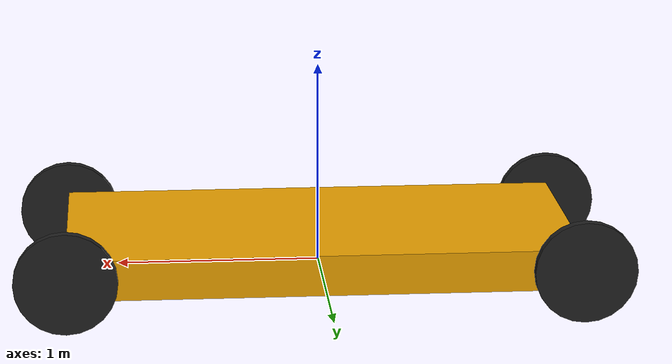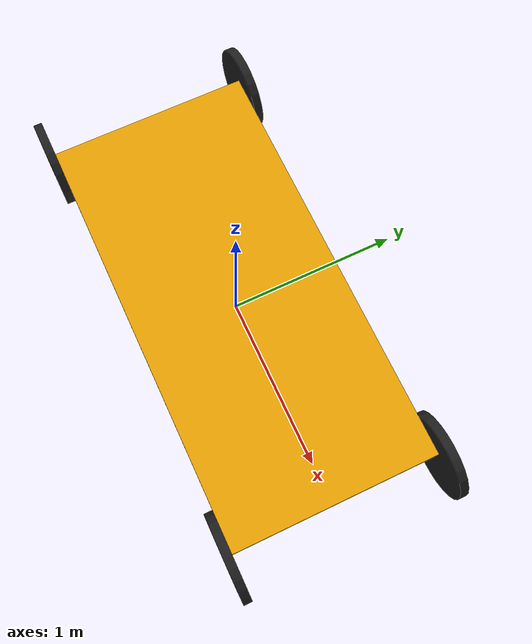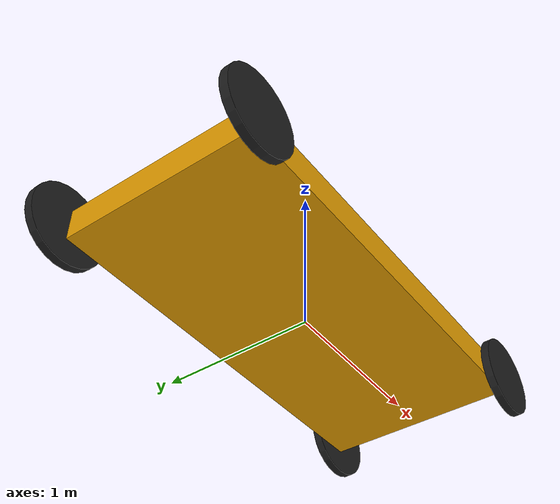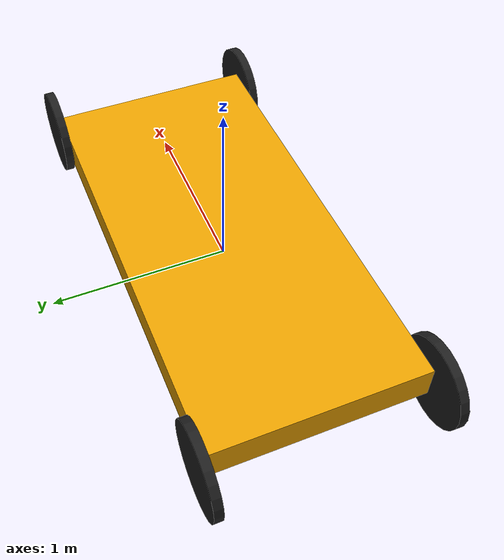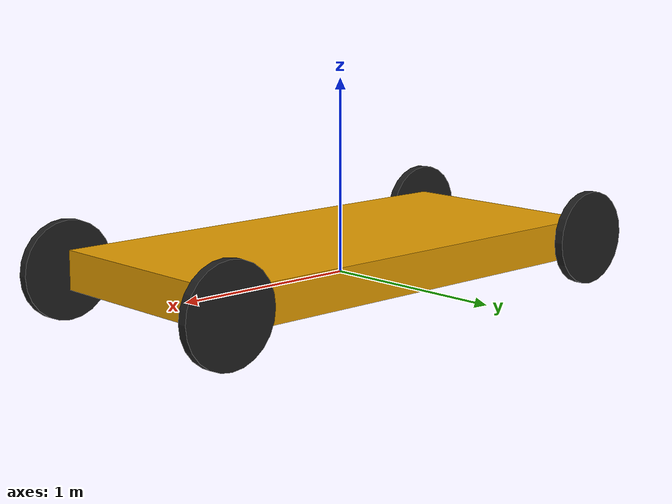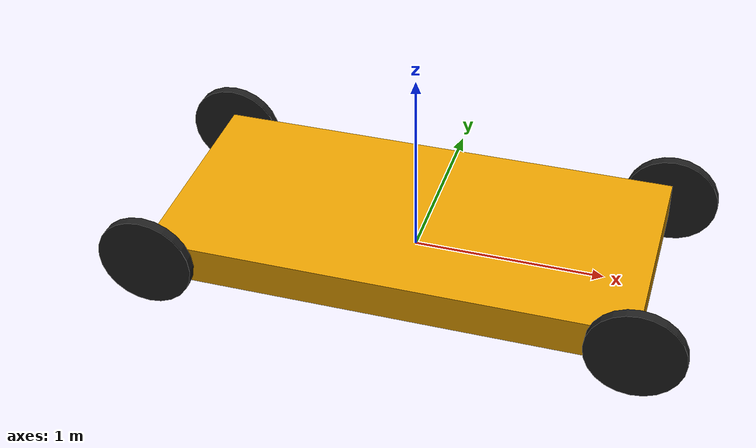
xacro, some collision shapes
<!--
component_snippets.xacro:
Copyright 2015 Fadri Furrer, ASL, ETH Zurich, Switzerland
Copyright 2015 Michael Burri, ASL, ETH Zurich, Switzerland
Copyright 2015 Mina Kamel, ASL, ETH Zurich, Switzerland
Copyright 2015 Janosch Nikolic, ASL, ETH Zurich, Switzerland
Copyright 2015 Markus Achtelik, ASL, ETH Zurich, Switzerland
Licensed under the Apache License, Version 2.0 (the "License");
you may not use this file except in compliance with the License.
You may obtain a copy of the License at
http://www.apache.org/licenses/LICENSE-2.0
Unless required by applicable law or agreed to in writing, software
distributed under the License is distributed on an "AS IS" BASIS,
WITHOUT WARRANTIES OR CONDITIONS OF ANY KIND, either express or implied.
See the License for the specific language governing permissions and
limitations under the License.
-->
<?xml version="1.0"?>

<robot name="car" xmlns:xacro="http://ros.org/wiki/xacro">

    <!--    Properties    -->
    <xacro:property name="namespace" value="car"/>
    <xacro:property name="PI" value="3.1415926535897931"/>
    <xacro:property name="skin_car" value="package://workshop_description/meshes/car/BMW.dae"/>

    <!-- Properties of base -->
    <xacro:property name="height" value=".2"/>
    <xacro:property name="width" value="1.2"/>
    <xacro:property name="length" value="2.5"/>
    <xacro:property name="mass_base" value="10"/>

    <!-- Properties of wheels    -->
    <xacro:property name="radius" value="0.25"/>
    <xacro:property name="h" value="0.05"/>
    <xacro:property name="mass_wheel" value="2"/>

    <!-- Including Color material for Gazebo -->
    <xacro:include filename="$(find workshop_description)/urdf/materials.xacro"/>

    <!--    Including sensors component-->
    <xacro:include filename="$(find workshop_description)/urdf/component_snippets.xacro"/>

    <!--    Include link to Gazebo structure-->
    <xacro:include filename="$(find workshop_description)/urdf/car.gazebo"/>

    <link name="base_link">
        <collision>
            <origin xyz="0 0 ${height/2}" rpy="0 0 0"/>
            <geometry>
                <box size="${length} ${width} ${height}"/>
            </geometry>
        </collision>
        <visual>
            <origin xyz="0 0 -${height/2}" rpy="${PI/2} 0 ${PI}"/>
            <geometry>
                <mesh filename="${skin_car}" scale="1 1 1"/>
            </geometry>
        </visual>
        <inertial>
            <origin xyz="0 0 ${height/2}" rpy="0 0 0"/>
            <mass value="${mass_base}"/>
            <inertia ixx="${mass_base / 12.0 * (height*height + width*width)}" ixy="0.0" ixz="0.0"
                     iyy="${mass_base / 12.0 * (height*height + length*length)}" iyz="0.0"
                     izz="${mass_base / 12.0 * (length*length + width*width)}"/>
        </inertial>
    </link>

    <joint name="front_wheel_r_joint" type="continuous">
        <origin xyz="${length/2} ${(h+width)/2} ${height/2}" rpy="0.0 0.0 0.0"/>
        <parent link="base_link"/>
        <child link="front_wheel_r_link"/>
        <axis xyz="0 1 0"/>
    </joint>

    <joint name="front_wheel_l_joint" type="continuous">
        <origin xyz="${length/2} -${(h+width)/2} ${height/2}" rpy="0.0 0.0 0"/>
        <parent link="base_link"/>
        <child link="front_wheel_l_link"/>
        <axis xyz="0 1 0"/>
    </joint>

    <joint name="back_wheel_r_joint" type="continuous">
        <origin xyz="${-length/2} ${(h+width)/2} ${height/2}" rpy="0.0 0.0 0.0"/>
        <parent link="base_link"/>
        <child link="back_wheel_r_link"/>
        <axis xyz="0 1 0"/>
    </joint>

    <joint name="back_wheel_l_joint" type="continuous">
        <origin xyz="${-length/2} -${(h+width)/2} ${height/2}" rpy="0.0 0.0 0.0"/>
        <parent link="base_link"/>
        <child link="back_wheel_l_link"/>
        <axis xyz="0 1 0"/>
    </joint>

    <link name="front_wheel_r_link">
        <visual>
            <origin xyz="0.0 0.0 0.0" rpy="${PI/2} 0.0 0.0"/>
            <geometry>
                <cylinder radius="${radius}" length="${h}"/>
            </geometry>
        </visual>
        <collision>
            <origin xyz="0.0 0.0 0.0" rpy="${PI/2} 0.0 0.0"/>
            <geometry>
                <cylinder radius="${radius}" length="${h}"/>
            </geometry>
        </collision>
        <inertial>
            <origin xyz="0.0 0.0 0.0" rpy="${PI/2} 0.0 0.0"/>
            <mass value="${mass_wheel}"/>
            <inertia ixx="${mass_wheel / 12.0 * (3*radius*radius + h*h)}" ixy="0.0" ixz="0.0"
                     iyy="${mass_wheel / 12.0 * (3*radius*radius + h*h)}" iyz="0.0"
                     izz="${mass_wheel / 2.0 * (radius*radius)}"/>
        </inertial>
    </link>

    <link name="front_wheel_l_link">
        <visual>
            <origin xyz="0.0 0.0 0.0" rpy="${PI/2} 0.0 0.0"/>
            <geometry>
                <cylinder radius="${radius}" length="${h}"/>
            </geometry>
        </visual>
        <collision>
            <origin xyz="0.0 0.0 0.0" rpy="${PI/2} 0.0 0.0"/>
            <geometry>
                <cylinder radius="${radius}" length="${h}"/>
            </geometry>
        </collision>
        <inertial>
            <origin xyz="0.0 0.0 0.0" rpy="${PI/2} 0.0 0.0"/>
            <mass value="${mass_wheel}"/>
            <inertia ixx="${mass_wheel / 12.0 * (3*radius*radius + h*h)}" ixy="0.0" ixz="0.0"
                     iyy="${mass_wheel / 12.0 * (3*radius*radius + h*h)}" iyz="0.0"
                     izz="${mass_wheel / 2.0 * (radius*radius)}"/>
        </inertial>
    </link>

    <link name="back_wheel_r_link">
        <visual>
            <origin xyz="0.0 0.0 0.0" rpy="${PI/2} 0.0 0.0"/>
            <geometry>
                <cylinder radius="${radius}" length="${h}"/>
            </geometry>
        </visual>
        <collision>
            <origin xyz="0.0 0.0 0.0" rpy="${PI/2} 0.0 0.0"/>
            <geometry>
                <cylinder radius="${radius}" length="${h}"/>
            </geometry>
        </collision>
        <inertial>
            <origin xyz="0.0 0.0 0.0" rpy="${PI/2} 0.0 0.0"/>
            <mass value="${mass_wheel}"/>
            <inertia ixx="${mass_wheel / 12.0 * (3*radius*radius + h*h)}" ixy="0.0" ixz="0.0"
                     iyy="${mass_wheel / 12.0 * (3*radius*radius + h*h)}" iyz="0.0"
                     izz="${mass_wheel / 2.0 * (radius*radius)}"/>
        </inertial>
    </link>

    <link name="back_wheel_l_link">
        <visual>
            <origin xyz="0.0 0.0 0.0" rpy="${PI/2} 0.0 0.0"/>
            <geometry>
                <cylinder radius="${radius}" length="${h}"/>
            </geometry>
        </visual>
        <collision>
            <origin xyz="0.0 0.0 0.0" rpy="${PI/2} 0.0 0.0"/>
            <geometry>
                <cylinder radius="${radius}" length="${h}"/>
            </geometry>
        </collision>
        <inertial>
            <origin xyz="0.0 0.0 0.0" rpy="${PI/2} 0.0 0.0"/>
            <mass value="${mass_wheel}"/>
            <inertia ixx="${mass_wheel / 12.0 * (3*radius*radius + h*h)}" ixy="0.0" ixz="0.0"
                     iyy="${mass_wheel / 12.0 * (3*radius*radius + h*h)}" iyz="0.0"
                     izz="${mass_wheel / 2.0 * (radius*radius)}"/>
        </inertial>
    </link>

    <joint name="imu_joint" type="fixed">
        <origin xyz="0 0.0 ${height}" rpy="0.0 0.0 0.0"/>
        <parent link="base_link"/>
        <child link="imu_link"/>
        <axis xyz="0.0 0.0 1.0"/>
    </joint>

    <link name="imu_link">
    </link>

    <transmission name="front_wheel_r_tran">
        <type>transmission_interface/SimpleTransmission</type>
        <joint name="front_wheel_r_joint">
            <hardwareInterface>hardware_interface/EffortJointInterface</hardwareInterface>
        </joint>
        <actuator name="front_wheel_r_motor">
            <hardwareInterface>hardware_interface/EffortJointInterface</hardwareInterface>
            <mechanicalReduction>1</mechanicalReduction>
        </actuator>
    </transmission>
    <transmission name="front_wheel_l_tran">
        <type>transmission_interface/SimpleTransmission</type>
        <joint name="front_wheel_l_joint">
            <hardwareInterface>hardware_interface/EffortJointInterface</hardwareInterface>
        </joint>
        <actuator name="front_wheel_l_motor">
            <hardwareInterface>hardware_interface/EffortJointInterface</hardwareInterface>
            <mechanicalReduction>1</mechanicalReduction>
        </actuator>
    </transmission>
    <transmission name="back_wheel_r_tran">
        <type>transmission_interface/SimpleTransmission</type>
        <joint name="back_wheel_r_joint">
            <hardwareInterface>hardware_interface/EffortJointInterface</hardwareInterface>
        </joint>
        <actuator name="back_wheel_r_motor">
            <hardwareInterface>hardware_interface/EffortJointInterface</hardwareInterface>
            <mechanicalReduction>1</mechanicalReduction>
        </actuator>
    </transmission>
    <transmission name="back_wheel_l_tran">
        <type>transmission_interface/SimpleTransmission</type>
        <joint name="back_wheel_l_joint">
            <hardwareInterface>hardware_interface/EffortJointInterface</hardwareInterface>
        </joint>
        <actuator name="back_wheel_l_motor">
            <hardwareInterface>hardware_interface/EffortJointInterface</hardwareInterface>
            <mechanicalReduction>1</mechanicalReduction>
        </actuator>
    </transmission>

    <!-- ADIS16448 IMU. -->
    <xacro:imu_plugin_macro
            namespace="${namespace}"
            imu_suffix=""
            parent_link="base_link"
            imu_topic="imu"
            mass_imu_sensor="0.00015"
            gyroscope_noise_density="0.0003394"
            gyroscope_random_walk="0.000038785"
            gyroscope_bias_correlation_time="1000.0"
            gyroscope_turn_on_bias_sigma="0.0087"
            accelerometer_noise_density="0.004"
            accelerometer_random_walk="0.006"
            accelerometer_bias_correlation_time="300.0"
            accelerometer_turn_on_bias_sigma="0.1960">
        <inertia ixx="0.000001" ixy="0.0" ixz="0.0" iyy="0.000001" iyz="0.0" izz="0.000001"/>
        <origin xyz="0 0 0" rpy="0 0 0"/>
    </xacro:imu_plugin_macro>

    <!-- Mount a Odometry Sensor -->
    <!--            namespace="${namespace}"-->
    <!--            odometry_sensor_suffix="1"-->
    <!--            parent_link="${namespace}/base_link"-->
    <!--            pose_topic="odometry_sensor/pose"-->
    <!--            pose_with_covariance_topic="odometry_sensor/pose_with_covariance"-->
    <!--            position_topic="odometry_sensor/position"-->
    <!--            transform_topic="odometry_sensor/transform"-->
    <!--            odometry_topic="odometry_sensor/odometry"-->
    <!--            parent_frame_id="world"-->
    <!--            child_frame_id="${namespace}/odometry_sensor1"-->
    <!--            mass_odometry_sensor="0.00001"-->
    <!--            measurement_divisor="1"-->
    <!--            measurement_delay="0"-->
    <!--            unknown_delay="0.0"-->
    <!--            noise_normal_position="0 0 0"-->
    <!--            noise_normal_quaternion="0 0 0"-->
    <!--            noise_normal_linear_velocity="0 0 0"-->
    <!--            noise_normal_angular_velocity="0 0 0"-->
    <!--            noise_uniform_position=".0 0 0"-->
    <!--            noise_uniform_quaternion="0 0 0"-->
    <!--            noise_uniform_linear_velocity="0 0 0"-->
    <!--            noise_uniform_angular_velocity="0 0 0"-->
    <!--            enable_odometry_map="false"-->
    <!--            odometry_map=""-->
    <!--            image_scale="">-->

    <!-- Mount a generic GPS sensor-->
    <!--            namespace="${namespace}"-->
    <!--            gps_suffix=""-->
    <!--            parent_link="${parent_link}"-->
    <!--            gps_topic="gps"-->
    <!--            ground_speed_topic="ground_speed"-->
    <!--            mass_gps_sensor="0.015"-->
    <!--            horizontal_pos_std_dev="3.0"-->
    <!--            vertical_pos_std_dev="0.1"-->
    <!--            horizontal_vel_std_dev="0.1"-->
    <!--            vertical_vel_std_dev="0.1">-->

</robot>

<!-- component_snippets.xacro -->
<robot xmlns:xacro="http://ros.org/wiki/xacro">
  <xacro:property name="pi" value="3.14159265359" />

  <!-- Macro to add an IMU. -->
    <xacro:macro name="imu_plugin_macro"
                 params="namespace imu_suffix parent_link imu_topic
      mass_imu_sensor gyroscope_noise_density gyroscope_random_walk
      gyroscope_bias_correlation_time gyroscope_turn_on_bias_sigma
      accelerometer_noise_density accelerometer_random_walk
      accelerometer_bias_correlation_time accelerometer_turn_on_bias_sigma
      *inertia *origin">
        <!-- IMU link -->
        <link name="${namespace}/imu${imu_suffix}_link">
            <inertial>
                <xacro:insert_block name="inertia" />
                <mass value="${mass_imu_sensor}" />  <!-- [kg] -->
                <origin xyz="0 0 0" rpy="0 0 0" />
            </inertial>
        </link>
        <!-- IMU joint -->
        <joint name="${namespace}/imu${imu_suffix}_joint" type="revolute">
            <xacro:insert_block name="origin" />
            <parent link="${parent_link}" />
            <child link="${namespace}/imu${imu_suffix}_link" />
            <limit upper="0" lower="0" effort="0" velocity="0" />
        </joint>
        <gazebo reference="imu_link">
            <gravity>true</gravity>
            <sensor name="imu_sensor" type="imu">
                <always_on>true</always_on>
                <update_rate>100</update_rate>
                <visualize>true</visualize>
                <plugin filename="libgazebo_ros_imu_sensor.so" name="imu_plugin">
                    <topicName>${imu_topic}</topicName>
                    <bodyName>imu_link</bodyName>
                    <updateRateHZ>10.0</updateRateHZ>
                    <gaussianNoise>0.0</gaussianNoise>
                    <xyzOffset>0 0 0</xyzOffset>
                    <rpyOffset>0 0 0</rpyOffset>
                    <frameName>imu_link</frameName>
                </plugin>
                <pose>0 0 0 0 0 0</pose>
            </sensor>
        </gazebo>
        <gazebo>
            <sensor name="imu_sensor" type="imu">
                <always_on>true</always_on>
                <update_rate>100</update_rate>
                <visualize>true</visualize>
                <topic>${imu_topic}</topic>
                <plugin filename="libgazebo_ros_imu_sensor.so" name="imu_plugin">
                    <!-- A good description of the IMU parameters can be found in the kalibr documentation:
                         https://github.com/ethz-asl/kalibr/wiki/IMU-Noise-Model-and-Intrinsics -->
                    <robotNamespace>${namespace}</robotNamespace> <!-- (string, required): ros namespace in which the messages are published -->
                    <linkName>${namespace}/imu${imu_suffix}_link</linkName> <!-- (string, required): name of the body which holds the IMU sensor -->
                    <imuTopic>${imu_topic}</imuTopic> <!-- (string): name of the sensor output topic and prefix of service names (defaults to imu) -->
                    <gyroscopeNoiseDensity>${gyroscope_noise_density}</gyroscopeNoiseDensity> <!-- Gyroscope noise density (two-sided spectrum) [rad/s/sqrt(Hz)] -->
                    <gyroscopeRandomWalk>${gyroscope_random_walk}</gyroscopeRandomWalk> <!-- Gyroscope bias random walk [rad/s/s/sqrt(Hz)] -->
                    <gyroscopeBiasCorrelationTime>${gyroscope_bias_correlation_time}</gyroscopeBiasCorrelationTime> <!-- Gyroscope bias correlation time constant [s] -->
                    <gyroscopeTurnOnBiasSigma>${gyroscope_turn_on_bias_sigma}</gyroscopeTurnOnBiasSigma> <!-- Gyroscope turn on bias standard deviation [rad/s] -->
                    <accelerometerNoiseDensity>${accelerometer_noise_density}</accelerometerNoiseDensity> <!-- Accelerometer noise density (two-sided spectrum) [m/s^2/sqrt(Hz)] -->
                    <accelerometerRandomWalk>${accelerometer_random_walk}</accelerometerRandomWalk> <!-- Accelerometer bias random walk. [m/s^2/s/sqrt(Hz)] -->
                    <accelerometerBiasCorrelationTime>${accelerometer_bias_correlation_time}</accelerometerBiasCorrelationTime> <!-- Accelerometer bias correlation time constant [s] -->
                    <accelerometerTurnOnBiasSigma>${accelerometer_turn_on_bias_sigma}</accelerometerTurnOnBiasSigma> <!-- Accelerometer turn on bias standard deviation [m/s^2] -->
                </plugin>
            </sensor>
        </gazebo>
    </xacro:macro>

  <!-- Macro to add a generic odometry sensor. -->
  <xacro:macro name="odometry_plugin_macro"
    params="
      namespace odometry_sensor_suffix parent_link pose_topic pose_with_covariance_topic
      position_topic transform_topic odometry_topic parent_frame_id child_frame_id
      mass_odometry_sensor measurement_divisor measurement_delay unknown_delay
      noise_normal_position noise_normal_quaternion noise_normal_linear_velocity
      noise_normal_angular_velocity noise_uniform_position
      noise_uniform_quaternion noise_uniform_linear_velocity
      noise_uniform_angular_velocity enable_odometry_map odometry_map
      image_scale *inertia *origin">
    <!-- odometry link -->
    <link name="${namespace}/odometry_sensor${odometry_sensor_suffix}_link">
      <inertial>
        <xacro:insert_block name="inertia" />
        <mass value="${mass_odometry_sensor}" />  <!-- [kg] -->
      </inertial>
    </link>
    <!-- odometry joint -->
    <joint name="${namespace}/odometry_sensor${odometry_sensor_suffix}_joint" type="revolute">
      <parent link="${parent_link}" />
      <xacro:insert_block name="origin" />
      <child link="${namespace}/odometry_sensor${odometry_sensor_suffix}_link" />
      <limit upper="0" lower="0" effort="0" velocity="0" />
    </joint>
    <gazebo>
      <plugin filename="librotors_gazebo_odometry_plugin.so" name="odometry_sensor${odometry_sensor_suffix}">
        <linkName>${namespace}/odometry_sensor${odometry_sensor_suffix}_link</linkName>
        <robotNamespace>${namespace}</robotNamespace>
        <poseTopic>${pose_topic}</poseTopic>
        <poseWithCovarianceTopic>${pose_with_covariance_topic}</poseWithCovarianceTopic>
        <positionTopic>${position_topic}</positionTopic>
        <transformTopic>${transform_topic}</transformTopic>
        <odometryTopic>${odometry_topic}</odometryTopic>
        <parentFrameId>${parent_frame_id}</parentFrameId> <!-- Use the scoped link name here. e.g. Model::link. -->
        <childFrameId>${child_frame_id}</childFrameId>
        <measurementDivisor>${measurement_divisor}</measurementDivisor> <!-- only every (seq % measurementDivisor) == 0 measurement is published [int] -->
        <measurementDelay>${measurement_delay}</measurementDelay> <!-- time that measurement gets held back before it's published in [simulation cycles (int)] -->
        <unknownDelay>${unknown_delay}</unknownDelay> <!-- additional delay, that just gets added to the timestamp [s] -->
        <noiseNormalPosition>${noise_normal_position}</noiseNormalPosition> <!-- standard deviation of additive white gaussian noise [m] -->
        <noiseNormalQuaternion>${noise_normal_quaternion}</noiseNormalQuaternion> <!-- standard deviation white gaussian noise [rad]: q_m = q*quaternionFromSmallAngleApproximation(noiseNormalQ) -->
        <noiseNormalLinearVelocity>${noise_normal_linear_velocity}</noiseNormalLinearVelocity> <!-- standard deviation of additive white gaussian noise [m/s] -->
        <noiseNormalAngularVelocity>${noise_normal_angular_velocity}</noiseNormalAngularVelocity> <!-- standard deviation of additive white gaussian noise [rad/s] -->
        <noiseUniformPosition>${noise_uniform_position}</noiseUniformPosition> <!-- symmetric bounds of uniform noise [m] -->
        <noiseUniformQuaternion>${noise_uniform_quaternion}</noiseUniformQuaternion> <!-- symmetric bounds of uniform noise [rad], computation see above -->
        <noiseUniformLinearVelocity>${noise_uniform_linear_velocity}</noiseUniformLinearVelocity> <!-- symmetric bounds of uniform noise [m/s] -->
        <noiseUniformAngularVelocity>${noise_uniform_angular_velocity}</noiseUniformAngularVelocity> <!-- symmetric bounds of uniform noise [rad/s] -->
        <xacro:if value="${enable_odometry_map}">
          <covarianceImage>package://vant3d_gazebo/resource/${odometry_map}</covarianceImage> <!-- a bitmap image describing where the sensor works (white), and where not (black) -->
          <covarianceImageScale>${image_scale}</covarianceImageScale> <!-- the scale of the image in the gazebo world, if set to 1.0, 1 pixel in the image corresponds to 1 meter in the world -->
        </xacro:if>
      </plugin>
    </gazebo>
  </xacro:macro>

  <!-- Macro to add a GPS sensor. -->
  <xacro:macro name="gps_plugin_macro"
    params="namespace gps_suffix parent_link gps_topic ground_speed_topic
      mass_gps_sensor horizontal_pos_std_dev vertical_pos_std_dev
      horizontal_vel_std_dev vertical_vel_std_dev *inertia *origin">
    <!-- GPS link -->
    <link name="${namespace}/gps${gps_suffix}_link">
      <inertial>
        <xacro:insert_block name="inertia" />
        <mass value="${mass_gps_sensor}" />  <!-- [kg] -->
        <origin xyz="0 0 0" rpy="0 0 0" />
      </inertial>
    </link>
    <!-- GPS joint -->
    <joint name="${namespace}/gps${gps_suffix}_joint" type="revolute">
      <xacro:insert_block name="origin" />
      <parent link="${parent_link}" />
      <child link="${namespace}/gps${gps_suffix}_link" />
      <limit upper="0" lower="0" effort="0" velocity="0" />
    </joint>
    <gazebo reference="${namespace}/gps${gps_suffix}_link">
      <sensor type="gps" name="${namespace}_gps${gps_suffix}">
        <pose>0 0 0 0 0 0</pose>
        <visualize>0</visualize>
        <always_on>1</always_on>
        <update_rate>5</update_rate>
        <gps>
          <position_sensing>
            <horizontal>
              <noise type="gaussian">
                <mean>0.0</mean>
                <stddev>${horizontal_pos_std_dev}</stddev>
                <bias_mean>0.0</bias_mean>
                <bias_stddev>0.0</bias_stddev>
              </noise>
            </horizontal>
            <vertical>
              <noise type="gaussian">
                <mean>0.0</mean>
                <stddev>${vertical_pos_std_dev}</stddev>
                <bias_mean>0.0</bias_mean>
                <bias_stddev>0.0</bias_stddev>
              </noise>
            </vertical>
          </position_sensing>
          <velocity_sensing>
            <horizontal>
              <noise type="gaussian">
                <mean>0.0</mean>
                <stddev>${horizontal_vel_std_dev}</stddev>
                <bias_mean>0.0</bias_mean>
                <bias_stddev>0.0</bias_stddev>
              </noise>
            </horizontal>
            <vertical>
              <noise type="gaussian">
                <mean>0.0</mean>
                <stddev>${vertical_vel_std_dev}</stddev>
                <bias_mean>0.0</bias_mean>
                <bias_stddev>0.0</bias_stddev>
              </noise>
            </vertical>
          </velocity_sensing>
        </gps>
        <plugin filename="librotors_gazebo_gps_plugin.so" name="rotors_gazebo_gps${gps_suffix}_plugin">
          <robotNamespace>${namespace}</robotNamespace> <!-- (string, required): ros namespace in which the messages are published -->
          <linkName>${namespace}/gps${gps_suffix}_link</linkName> <!-- (string, required): name of the body which holds the GPS sensor -->
          <gpsTopic>${gps_topic}</gpsTopic> <!-- (string): name of the sensor output topic and prefix of service names (defaults to 'gps') -->
          <groundSpeedTopic>${ground_speed_topic}</groundSpeedTopic> <!-- (string): name of the ground speed output topic (defaults to 'ground_speed') -->
          <horPosStdDev>${horizontal_pos_std_dev}</horPosStdDev> <!-- standard deviation for horizontal position noise [m] -->
          <verPosStdDev>${vertical_pos_std_dev}</verPosStdDev> <!-- standard deviation for vertical position noise [m] -->
          <horVelStdDev>${horizontal_vel_std_dev}</horVelStdDev> <!-- standard deviation for horizontal speed noise [m/s] -->
          <verVelStdDev>${vertical_vel_std_dev}</verVelStdDev> <!-- standard deviation for vertical speed noise [m/s] -->
        </plugin>
      </sensor>
    </gazebo>
  </xacro:macro>

</robot>
